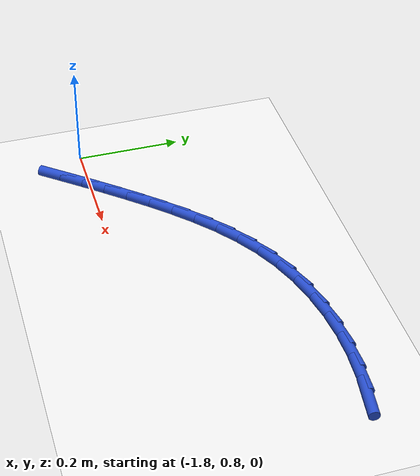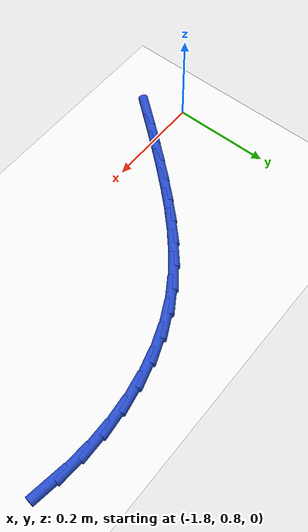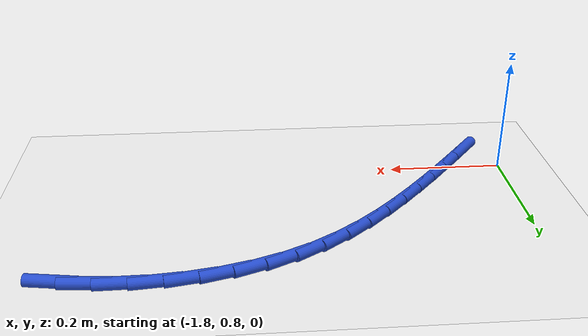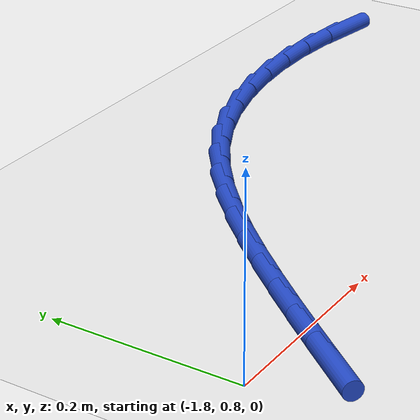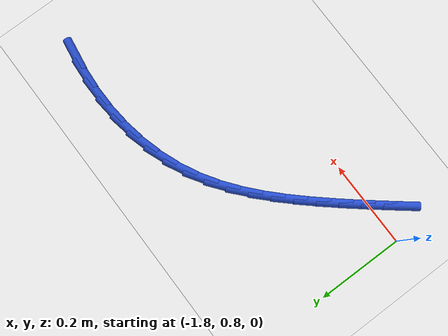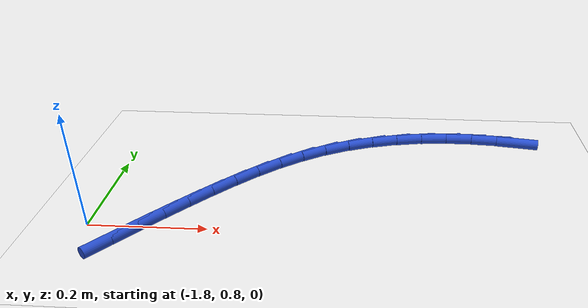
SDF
<sdf version="1.6">
 <world name="default">
  <model name="ground_plane">
   <static>1</static>
   <link name="link">
    <collision name="collision">
     <geometry><plane><normal>0 0 1</normal><size>100 100</size></plane></geometry>
     <surface><friction><ode><mu>100</mu><mu2>50</mu2></ode></friction></surface>
    </collision>
    <visual name="visual">
     <cast_shadows>0</cast_shadows>
     <geometry><plane><normal>0 0 1</normal><size>100 100</size></plane></geometry>
     <material>
      <script><uri>file://media/materials/scripts/gazebo.material</uri><name>Gazebo/WhiteGlow</name></script>
     </material>
    </visual>
   </link>
  </model>
  <model name="line">
   <link name="link_33">
    <pose>-1.046766978245515 1.1120912342545275 0.01 0 1.57 -0.15147222430488186</pose>
    <collision name="collision">
     <geometry><cylinder><radius>0.01</radius><length>0.08</length></cylinder></geometry>
    </collision>
    <visual name="visual">
     <material>
      <script><name>Gazebo/Blue</name><uri>file://media/materials/scripts/gazebo.material</uri></script>
     </material>
     <geometry><cylinder><radius>0.01</radius><length>0.08</length></cylinder></geometry>
    </visual>
   </link>
   <link name="link_34">
    <pose>-1.0962960239960349 1.1196514174812258 0.01 0 1.57 -0.06748028130849294</pose>
    <collision name="collision">
     <geometry><cylinder><radius>0.01</radius><length>0.08</length></cylinder></geometry>
    </collision>
    <visual name="visual">
     <material>
      <script><name>Gazebo/Blue</name><uri>file://media/materials/scripts/gazebo.material</uri></script>
     </material>
     <geometry><cylinder><radius>0.01</radius><length>0.08</length></cylinder></geometry>
    </visual>
   </link>
   <link name="link_35">
    <pose>-1.1467035981388418 1.123058107222472 0.01 0 1.57 0.015690696835988168</pose>
    <collision name="collision">
     <geometry><cylinder><radius>0.01</radius><length>0.08</length></cylinder></geometry>
    </collision>
    <visual name="visual">
     <material>
      <script><name>Gazebo/Blue</name><uri>file://media/materials/scripts/gazebo.material</uri></script>
     </material>
     <geometry><cylinder><radius>0.01</radius><length>0.08</length></cylinder></geometry>
    </visual>
   </link>
   <link name="link_36">
    <pose>-1.1974312244332377 1.1222620900900717 0.01 0 1.57 0.09964937911850397</pose>
    <collision name="collision">
     <geometry><cylinder><radius>0.01</radius><length>0.08</length></cylinder></geometry>
    </collision>
    <visual name="visual">
     <material>
      <script><name>Gazebo/Blue</name><uri>file://media/materials/scripts/gazebo.material</uri></script>
     </material>
     <geometry><cylinder><radius>0.01</radius><length>0.08</length></cylinder></geometry>
    </visual>
   </link>
   <link name="link_37">
    <pose>-1.2479204266385242 1.1172141526958304 0.01 0 1.57 0.1859653915850451</pose>
    <collision name="collision">
     <geometry><cylinder><radius>0.01</radius><length>0.08</length></cylinder></geometry>
    </collision>
    <visual name="visual">
     <material>
      <script><name>Gazebo/Blue</name><uri>file://media/materials/scripts/gazebo.material</uri></script>
     </material>
     <geometry><cylinder><radius>0.01</radius><length>0.08</length></cylinder></geometry>
    </visual>
   </link>
   <link name="link_38">
    <pose>-1.2976127285140013 1.1078650816515525 0.01 0 1.57 0.27617277642183796</pose>
    <collision name="collision">
     <geometry><cylinder><radius>0.01</radius><length>0.08</length></cylinder></geometry>
    </collision>
    <visual name="visual">
     <material>
      <script><name>Gazebo/Blue</name><uri>file://media/materials/scripts/gazebo.material</uri></script>
     </material>
     <geometry><cylinder><radius>0.01</radius><length>0.08</length></cylinder></geometry>
    </visual>
   </link>
   <link name="link_39">
    <pose>-1.3459496538189715 1.0941656635690433 0.01 0 1.57 0.3717435163472172</pose>
    <collision name="collision">
     <geometry><cylinder><radius>0.01</radius><length>0.08</length></cylinder></geometry>
    </collision>
    <visual name="visual">
     <material>
      <script><name>Gazebo/Blue</name><uri>file://media/materials/scripts/gazebo.material</uri></script>
     </material>
     <geometry><cylinder><radius>0.01</radius><length>0.08</length></cylinder></geometry>
    </visual>
   </link>
   <link name="link_40">
    <pose>-1.3923727263127352 1.0760666850601077 0.01 0 1.57 0.4737704807292046</pose>
    <collision name="collision">
     <geometry><cylinder><radius>0.01</radius><length>0.08</length></cylinder></geometry>
    </collision>
    <visual name="visual">
     <material>
      <script><name>Gazebo/Blue</name><uri>file://media/materials/scripts/gazebo.material</uri></script>
     </material>
     <geometry><cylinder><radius>0.01</radius><length>0.08</length></cylinder></geometry>
    </visual>
   </link>
   <link name="link_41">
    <pose>-1.4363328076587616 1.0535275426008113 0.01 0 1.57 0.5736998329180988</pose>
    <collision name="collision">
     <geometry><cylinder><radius>0.01</radius><length>0.08</length></cylinder></geometry>
    </collision>
    <visual name="visual">
     <material>
      <script><name>Gazebo/Blue</name><uri>file://media/materials/scripts/gazebo.material</uri></script>
     </material>
     <geometry><cylinder><radius>0.01</radius><length>0.08</length></cylinder></geometry>
    </visual>
   </link>
   <link name="link_42">
    <pose>-1.4776374078307344 1.0268364745020435 0.01 0 1.57 0.6588415193146527</pose>
    <collision name="collision">
     <geometry><cylinder><radius>0.01</radius><length>0.08</length></cylinder></geometry>
    </collision>
    <visual name="visual">
     <material>
      <script><name>Gazebo/Blue</name><uri>file://media/materials/scripts/gazebo.material</uri></script>
     </material>
     <geometry><cylinder><radius>0.01</radius><length>0.08</length></cylinder></geometry>
    </visual>
   </link>
   <link name="link_43">
    <pose>-1.516553687885951 0.9967055329590829 0.01 0 1.57 0.7281121211325399</pose>
    <collision name="collision">
     <geometry><cylinder><radius>0.01</radius><length>0.08</length></cylinder></geometry>
    </collision>
    <visual name="visual">
     <material>
      <script><name>Gazebo/Blue</name><uri>file://media/materials/scripts/gazebo.material</uri></script>
     </material>
     <geometry><cylinder><radius>0.01</radius><length>0.08</length></cylinder></geometry>
    </visual>
   </link>
   <link name="link_44">
    <pose>-1.5533791639401537 0.9638747585603372 0.01 0 1.57 0.78193767921994</pose>
    <collision name="collision">
     <geometry><cylinder><radius>0.01</radius><length>0.08</length></cylinder></geometry>
    </collision>
    <visual name="visual">
     <material>
      <script><name>Gazebo/Blue</name><uri>file://media/materials/scripts/gazebo.material</uri></script>
     </material>
     <geometry><cylinder><radius>0.01</radius><length>0.08</length></cylinder></geometry>
    </visual>
   </link>
   <link name="link_45">
    <pose>-1.588411352109083 0.929084191894214 0.01 0 1.57 0.8209549626306731</pose>
    <collision name="collision">
     <geometry><cylinder><radius>0.01</radius><length>0.08</length></cylinder></geometry>
    </collision>
    <visual name="visual">
     <material>
      <script><name>Gazebo/Blue</name><uri>file://media/materials/scripts/gazebo.material</uri></script>
     </material>
     <geometry><cylinder><radius>0.01</radius><length>0.08</length></cylinder></geometry>
    </visual>
   </link>
   <link name="link_46">
    <pose>-1.6219477685084809 0.8930738735491202 0.01 0 1.57 0.8464739829932372</pose>
    <collision name="collision">
     <geometry><cylinder><radius>0.01</radius><length>0.08</length></cylinder></geometry>
    </collision>
    <visual name="visual">
     <material>
      <script><name>Gazebo/Blue</name><uri>file://media/materials/scripts/gazebo.material</uri></script>
     </material>
     <geometry><cylinder><radius>0.01</radius><length>0.08</length></cylinder></geometry>
    </visual>
   </link>
   <link name="link_47">
    <pose>-1.6542833155912806 0.8565259745186992 0.01 0 1.57 0.8648333495760041</pose>
    <collision name="collision">
     <geometry><cylinder><radius>0.01</radius><length>0.08</length></cylinder></geometry>
    </collision>
    <visual name="visual">
     <material>
      <script><name>Gazebo/Blue</name><uri>file://media/materials/scripts/gazebo.material</uri></script>
     </material>
     <geometry><cylinder><radius>0.01</radius><length>0.08</length></cylinder></geometry>
    </visual>
   </link>
   <link name="link_48">
    <pose>-1.6856930455960712 0.8196831585056136 0.01 0 1.57 0.8786747877065457</pose>
    <collision name="collision">
     <geometry><cylinder><radius>0.01</radius><length>0.08</length></cylinder></geometry>
    </collision>
    <visual name="visual">
     <material>
      <script><name>Gazebo/Blue</name><uri>file://media/materials/scripts/gazebo.material</uri></script>
     </material>
     <geometry><cylinder><radius>0.01</radius><length>0.08</length></cylinder></geometry>
    </visual>
   </link>
   <link name="link_49">
    <pose>-1.716442900656303 0.7825863806788251 0.01 0 1.57 0.8878211881460114</pose>
    <collision name="collision">
     <geometry><cylinder><radius>0.01</radius><length>0.08</length></cylinder></geometry>
    </collision>
    <visual name="visual">
     <material>
      <script><name>Gazebo/Blue</name><uri>file://media/materials/scripts/gazebo.material</uri></script>
     </material>
     <geometry><cylinder><radius>0.01</radius><length>0.08</length></cylinder></geometry>
    </visual>
   </link>
   <link name="link_50">
    <pose>-1.7467987751618146 0.7452755391070678 0.01 0 1.57 0.8921670746372405</pose>
    <collision name="collision">
     <geometry><cylinder><radius>0.01</radius><length>0.08</length></cylinder></geometry>
    </collision>
    <visual name="visual">
     <material>
      <script><name>Gazebo/Blue</name><uri>file://media/materials/scripts/gazebo.material</uri></script>
     </material>
     <geometry><cylinder><radius>0.01</radius><length>0.08</length></cylinder></geometry>
    </visual>
   </link>
  </model>
 </world>
</sdf>
